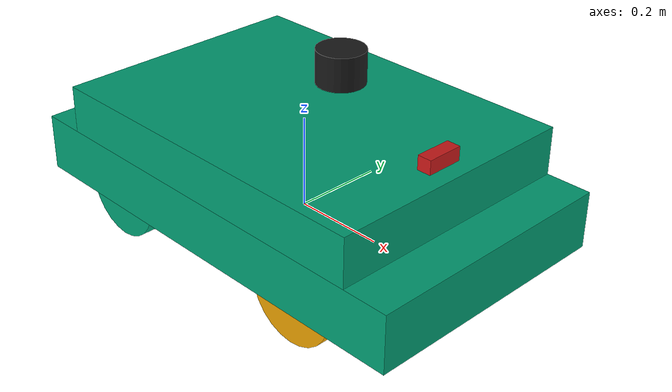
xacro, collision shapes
<?xml version="1.0"?>
<robot xmlns:xacro="http://www.ros.org/wiki/xacro"  name="robot">
    <xacro:include filename="$(find hunter_description)/description/sensors.xacro" />  <!--RM_Step02 과정에서 추가 -->
    <xacro:arg name="prefix" default="" />
    <xacro:arg name="use_ros2_control" default="true"/>
    <xacro:arg name="is_sim" default="true"/>
    <xacro:include filename="$(find hunter_description)/description/hunter_core.urdf.xacro"/>
    <xacro:dogbot prefix="$(arg prefix)" is_sim="$(arg is_sim)"/>
    <xacro:if value="$(arg use_ros2_control)">
        <xacro:include filename="$(find hunter_description)/description/ros2_control.xacro" />
    </xacro:if>
    <xacro:unless value="$(arg use_ros2_control)">
    </xacro:unless>
</robot>

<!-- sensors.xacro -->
<robot xmlns:xacro="http://www.ros.org/wiki/xacro">
    <!-- 3D-LiDAR Link & Joint -->
    <link name="velodyne_link">
        <visual>
            <origin xyz="0 0 0" rpy="0 0 0"/>
            <geometry>
                <cylinder radius="0.05" length="0.07"/>
            </geometry>
            <material name="black">
                <color rgba="0.1 0.1 0.1 1.0"/>
            </material>
        </visual>
        <collision>
            <origin xyz="0 0 0" rpy="0 0 0"/>
            <geometry>
                <cylinder radius="0.05" length="0.07"/>
            </geometry>
        </collision>
        <inertial>
            <mass value="0.8"/>
            <origin xyz="0 0 0"/>
            <inertia ixx="0.001" ixy="0" ixz="0" iyy="0.001" iyz="0" izz="0.001"/>
        </inertial>
    </link>

    <joint name="velodyne_joint" type="fixed">
        <parent link="base_link"/>
        <child link="velodyne_link"/>
        <origin xyz="0.1 0 0.35" rpy="0 0 0"/>
    </joint>

    <!-- Gazebo 3D LiDAR Plugin -->
    <gazebo reference="velodyne_link">
        <sensor type="ray" name="velodyne_sensor">
            <pose>0 0 0 0 0 0</pose>
            <visualize>false</visualize>
            <update_rate>10</update_rate>
            <ray>
                <scan>
                    <horizontal>
                        <samples>360</samples>
                        <resolution>1</resolution>
                        <min_angle>-3.14159265</min_angle>
                        <max_angle>3.14159265</max_angle>
                    </horizontal>
                    <vertical>
                        <samples>16</samples>
                        <resolution>1</resolution>
                        <min_angle>-0.261799</min_angle> <!-- -15 deg -->
                        <max_angle>0.261799</max_angle>  <!-- +15 deg -->
                    </vertical>
                </scan>
                <range>
                    <min>0.3</min>
                    <max>100.0</max>
                    <resolution>0.001</resolution>
                </range>
            </ray>
            <plugin name="gazebo_ros_laser_controller" filename="libgazebo_ros_ray_sensor.so">
                <ros>
                    <remapping>~/out:=/points_raw</remapping>
                </ros>
                <output_type>sensor_msgs/PointCloud2</output_type>
                <frame_name>velodyne_link</frame_name>
            </plugin>
        </sensor>
    </gazebo>

    <!-- Camera Link & Joint -->
    <link name="camera_link">
        <visual>
            <origin xyz="0 0 0" rpy="0 0 0"/>
            <geometry>
                <box size="0.03 0.08 0.03"/>
            </geometry>
            <material name="red">
                <color rgba="0.8 0.1 0.1 1.0"/>
            </material>
        </visual>
        <collision>
            <origin xyz="0 0 0" rpy="0 0 0"/>
            <geometry>
                <box size="0.03 0.08 0.03"/>
            </geometry>
        </collision>
        <inertial>
            <mass value="0.1"/>
            <origin xyz="0 0 0"/>
            <inertia ixx="0.0001" ixy="0" ixz="0" iyy="0.0001" iyz="0" izz="0.0001"/>
        </inertial>
    </link>

    <joint name="camera_joint" type="fixed">
        <parent link="base_link"/>
        <child link="camera_link"/>
        <origin xyz="0.35 0 0.25" rpy="0 0 0"/>
    </joint>

    <!-- Gazebo Camera Plugin -->
    <gazebo reference="camera_link">
        <sensor type="camera" name="camera_sensor">
            <update_rate>30.0</update_rate>
            <camera name="front_camera">
                <horizontal_fov>1.3962634</horizontal_fov>
                <image>
                    <width>640</width>
                    <height>480</height>
                    <format>R8G8B8</format>
                </image>
                <clip>
                    <near>0.02</near>
                    <far>300</far>
                </clip>
            </camera>
            <plugin name="camera_controller" filename="libgazebo_ros_camera.so">
                <ros>
                    <remapping>~/image_raw:=/camera/image_raw</remapping>
                    <remapping>~/camera_info:=/camera/camera_info</remapping>
                </ros>
                <camera_name>camera</camera_name>
                <frame_name>camera_link</frame_name>
            </plugin>
        </sensor>
    </gazebo>
</robot>

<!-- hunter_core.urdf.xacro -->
<robot xmlns:xacro="http://www.ros.org/wiki/xacro" >
<xacro:include filename="$(find hunter_description)/description/wheel.urdf.xacro"/>
<xacro:macro name="dogbot" params="prefix:='' is_sim:=true">
     <!-- Base Size -->
    <xacro:property name="base_x_size" value="0.98740000" />
    <xacro:property name="base_y_size" value="0.57090000" />
    <xacro:property name="base_z_size" value="0.24750000" />

    <!-- Wheel Mounting Positions -->
    <xacro:property name="wheelbase" value="0.5120" />
    <xacro:property name="track" value="0.4908" />   <!-- Original 0.5708, after 0.4908 -->
    <xacro:property name="wheel_vertical_offset" value="0.03282" />

    <!-- Wheel Properties -->
    <xacro:property name="wheel_length" value="0.1143" />
    <xacro:property name="wheel_radius" value="0.1651" />

    <xacro:property name="hunter_front_bumper_extend" value="0" />
    <xacro:property name="hunter_rear_bumper_extend" value="0" />

    <xacro:property name="M_PI" value="3.14159"/>

    <!-- Base link is the center of the robot's bottom plate -->

    <link name="${prefix}base_link">
      <visual>
        <origin xyz="-0.05 0 0.18" rpy="0 0 0" />
        <geometry>
          <mesh filename="file://$(find hunter_description)/meshes/chassis.dae" />
        </geometry>
      </visual>
      <collision>
        <origin xyz="${( hunter_front_bumper_extend - hunter_rear_bumper_extend ) / 2.0} 0 ${base_z_size/4}" rpy="0 0 0" />
        <geometry>
          <box size="${ base_x_size + hunter_front_bumper_extend + hunter_rear_bumper_extend } ${base_y_size} ${base_z_size/2}"/>
        </geometry>
      </collision>
      <collision>
        <origin xyz="0 0 ${base_z_size*3/4-0.01}" rpy="0 0 0" />
        <geometry>
          <box size="${base_x_size*4/5} ${base_y_size} ${base_z_size/2-0.02}"/>
        </geometry>
      </collision>
    </link>

    <!-- Base footprint is on the ground under the robot -->
    <link name="${prefix}base_footprint"/>

    <joint name="${prefix}base_footprint_joint" type="fixed">
      <origin xyz="0 0 ${wheel_vertical_offset - wheel_radius * 0.6}" rpy="0 0 0" />
      <parent link="${prefix}base_link" />
      <child link="${prefix}base_footprint" />
    </joint>

    <!-- Inertial link stores the robot's inertial information -->
    <link name="${prefix}inertial_link">
      <inertial>
        <mass value="1.034" />
        <origin xyz="-0.00065 -0.085 0.062" />
        <inertia ixx="0.6022" ixy="-0.02364" ixz="-0.1197" iyy="1.7386" iyz="-0.001544" izz="2.0296" />
      </inertial>
    </link>

    <joint name="${prefix}inertial_joint" type="fixed">
      <origin xyz="0 0 0" rpy="0 0 0" />
      <parent link="${prefix}base_link" />
      <child link="${prefix}inertial_link" />
    </joint>

    <!-- 기존 코드 -->

    <!-- [수정/추가 코드] 전륜 바퀴 2개는 조향 매크로(hunter_steering_wheel) 사용 for Ackermann steering -->
    <xacro:hunter_steering_wheel wheel_prefix="${prefix}front_left" x="${wheelbase/2}" y="${track/2}" z="${wheel_vertical_offset}" is_sim="${is_sim}"/>
    <xacro:hunter_steering_wheel wheel_prefix="${prefix}front_right" x="${wheelbase/2}" y="${-track/2}" z="${wheel_vertical_offset}" is_sim="${is_sim}"/>
    <!-- 후륜 바퀴 (속도 제어) -->
    <xacro:hunter_wheel wheel_prefix="${prefix}back_left" x="${-wheelbase/2}" y="${track/2}" z="${wheel_vertical_offset}" is_sim="${is_sim}"/>
    <xacro:hunter_wheel wheel_prefix="${prefix}back_right" x="${-wheelbase/2}" y="${-track/2}" z="${wheel_vertical_offset}" is_sim="${is_sim}"/>
</xacro:macro>
</robot>

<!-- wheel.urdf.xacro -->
<robot xmlns:xacro="http://ros.org/wiki/xacro" name="hunter_wheel">

  <xacro:macro name="hunter_wheel" params="wheel_prefix x y z roll:=0.0 pitch:=0.0 yaw:=0.0 is_sim:=true">
    <link name="${wheel_prefix}_wheel">
      <inertial>
        <mass value="2.637" />
        <origin xyz="0 0 0" />
        <inertia  ixx="0.02467" ixy="0" ixz="0" iyy="0.04411" iyz="0" izz="0.02467" />
      </inertial>

      <!-- [수정/추가 코드] Y축 회전 시 위아래 덜컹거림(편심)을 일으키는 Z축 오프셋(-0.06)을 0으로 제거 -->
      <visual>
        <origin xyz="0 0 0" rpy="0 0 0" />
        <geometry>
          <mesh filename="file://$(find hunter_description)/meshes/wheel.dae" scale="0.6 0.6 0.6"/>
        </geometry>
      </visual>

      <collision>
        <origin xyz="0 0 0" rpy="${M_PI/2} 0 0" />
        <geometry>
          <!-- [수정 코드] 메쉬 크기(0.6)에 맞춰 충돌체 크기 비율 조정 -->
          <cylinder length="${wheel_length * 0.6}" radius="${wheel_radius * 0.6}" />
        </geometry>
      </collision>
    </link>

  <xacro:if value="${is_sim}">
      <joint name="${wheel_prefix}_wheel_joint" type="continuous">
      <parent link="base_link"/>
      <child link="${wheel_prefix}_wheel"/>
      <origin xyz="${x} ${y} ${z}" rpy="${roll} ${pitch} ${yaw}"/>
      <axis xyz="0 1 0" rpy="0 0 0" />
      <limit effort="100.0" velocity="20.0"/>
    </joint>
    <gazebo reference="${wheel_prefix}_wheel">
      <mu1 value="100.0"/>   <!-- 0.5 -> 100.0 상향 -->
      <mu2 value="100.0"/>   <!-- 0.5 -> 100.0 상향 -->
      <kp value="10000000.0" />
      <kd value="1.0" />
    </gazebo>
  </xacro:if>

  <xacro:unless value="${is_sim}">
    <joint name="${wheel_prefix}_wheel_joint" type="fixed">
      <parent link="base_link"/>
      <child link="${wheel_prefix}_wheel"/>
      <origin xyz="${x} ${y} ${z}" rpy="${roll} ${pitch} ${yaw}"/>
      <axis xyz="0 1 0" rpy="0 0 0" />
    </joint>
  </xacro:unless>
  </xacro:macro>

    <!-- [새로 추가: 전륜 조향 바퀴 매크로 - Z축 조향 관절 + Y축 구동 관절] -->
  <xacro:macro name="hunter_steering_wheel" params="wheel_prefix x y z roll:=0.0 pitch:=0.0 yaw:=0.0 is_sim:=true">

    <!-- 조향 킹핀 링크 (Dummy Steering Link) -->
    <link name="${wheel_prefix}_steering_link">
      <inertial>
        <mass value="0.5" />
        <origin xyz="0 0 0" />
        <inertia ixx="0.001" ixy="0" ixz="0" iyy="0.001" iyz="0" izz="0.001" />
      </inertial>
    </link>
    <!-- 1. Z축 조향 관절 (base_link -> steering_link) -->
    <joint name="${wheel_prefix}_steering_joint" type="revolute">
      <parent link="base_link"/>
      <child link="${wheel_prefix}_steering_link"/>
      <origin xyz="${x} ${y} ${z}" rpy="${roll} ${pitch} ${yaw}"/>
      <axis xyz="0 0 1"/>
      <limit lower="-1.2" upper="1.2" effort="100.0" velocity="2.0"/>
      <dynamics damping="1.0" friction="0.1"/>
    </joint>
    <!-- 바퀴 링크 -->
    <link name="${wheel_prefix}_wheel">
      <inertial>
        <mass value="2.637" />
        <origin xyz="0 0 0" />
        <inertia ixx="0.02467" ixy="0" ixz="0" iyy="0.04411" iyz="0" izz="0.02467" />
      </inertial>
      <visual>
        <origin xyz="0 0 0" rpy="0 0 0" />
        <geometry>
          <mesh filename="file://$(find hunter_description)/meshes/wheel.dae" scale="0.6 0.6 0.6"/>
        </geometry>
      </visual>
      <collision>
        <origin xyz="0 0 0" rpy="${M_PI/2} 0 0" />
        <geometry>
          <cylinder length="${wheel_length * 0.6}" radius="${wheel_radius * 0.6}" />
        </geometry>
      </collision>
    </link>
    <!-- 2. Y축 바퀴 회전 관절 (steering_link -> wheel) -->
    <joint name="${wheel_prefix}_wheel_joint" type="continuous">
      <parent link="${wheel_prefix}_steering_link"/>
      <child link="${wheel_prefix}_wheel"/>
      <origin xyz="0 0 0" rpy="0 0 0"/>
      <axis xyz="0 1 0"/>
      <limit effort="100.0" velocity="20.0"/>
    </joint>
    <gazebo reference="${wheel_prefix}_wheel">
      <mu1 value="100.0"/>   <!-- 10.0 -> 100.0 상향 (슬립 방지) 🌟 -->
      <mu2 value="100.0"/>   <!-- 10.0 -> 100.0 상향 (슬립 방지) 🌟 -->
      <kp value="10000000.0" />
      <kd value="1.0" />
    </gazebo>
  </xacro:macro>

</robot>
